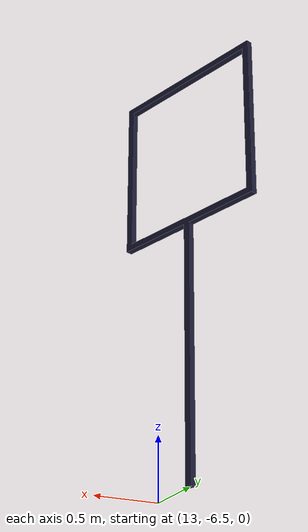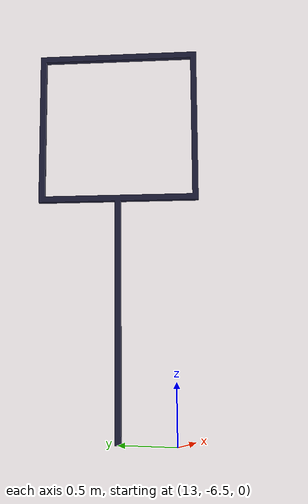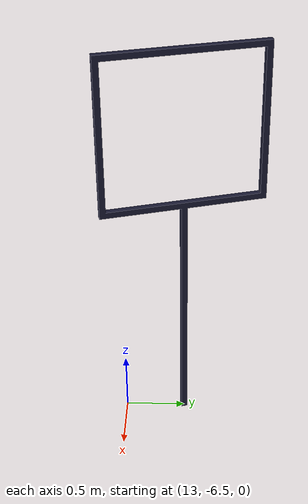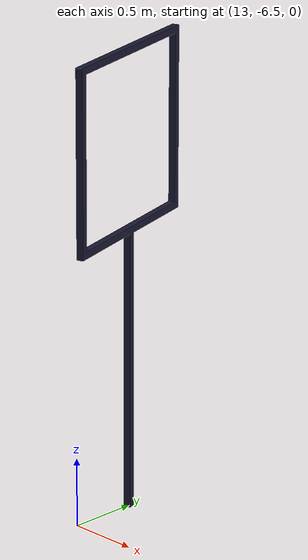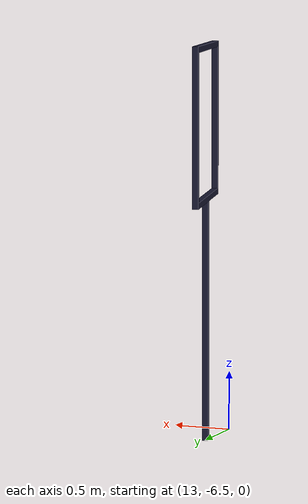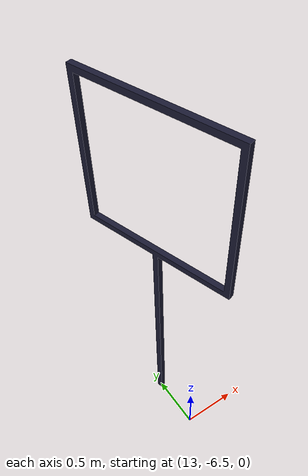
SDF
<?xml version='1.0'?>
<sdf version='1.6'>
  <model name='iROS2016 Track'>
    <link name="gate_05">
      <pose>13 -6 0  0 0 5</pose>
      <visual name="visual">
	      <geometry>
          <mesh><uri>model://iros2016_track/gates/05.dae</uri></mesh>
        </geometry>
        <material>
          <ambient>0 0 1 1</ambient>
          <diffuse>0.1 0.1 0.2 1</diffuse>
          <specular>0 0 0 0</specular>
          <emissive>0 0 0 1</emissive>
        </material>
      </visual>
    </link>
    <static>1</static>
    <allow_auto_disable>1</allow_auto_disable>
  </model>
</sdf>
